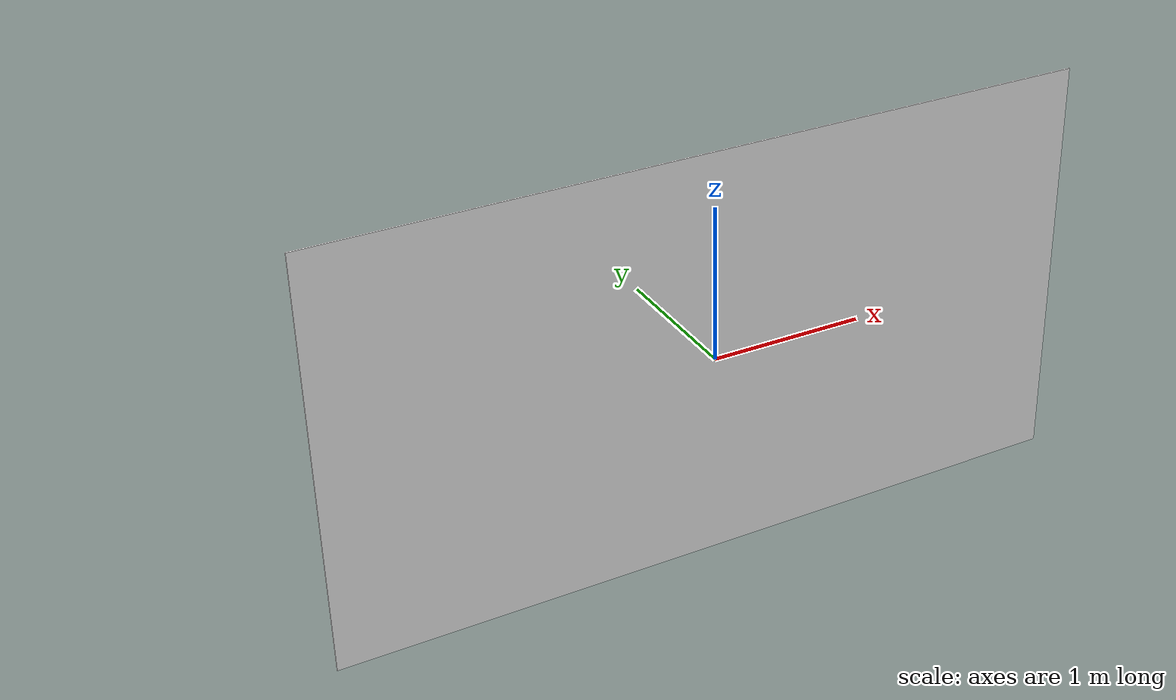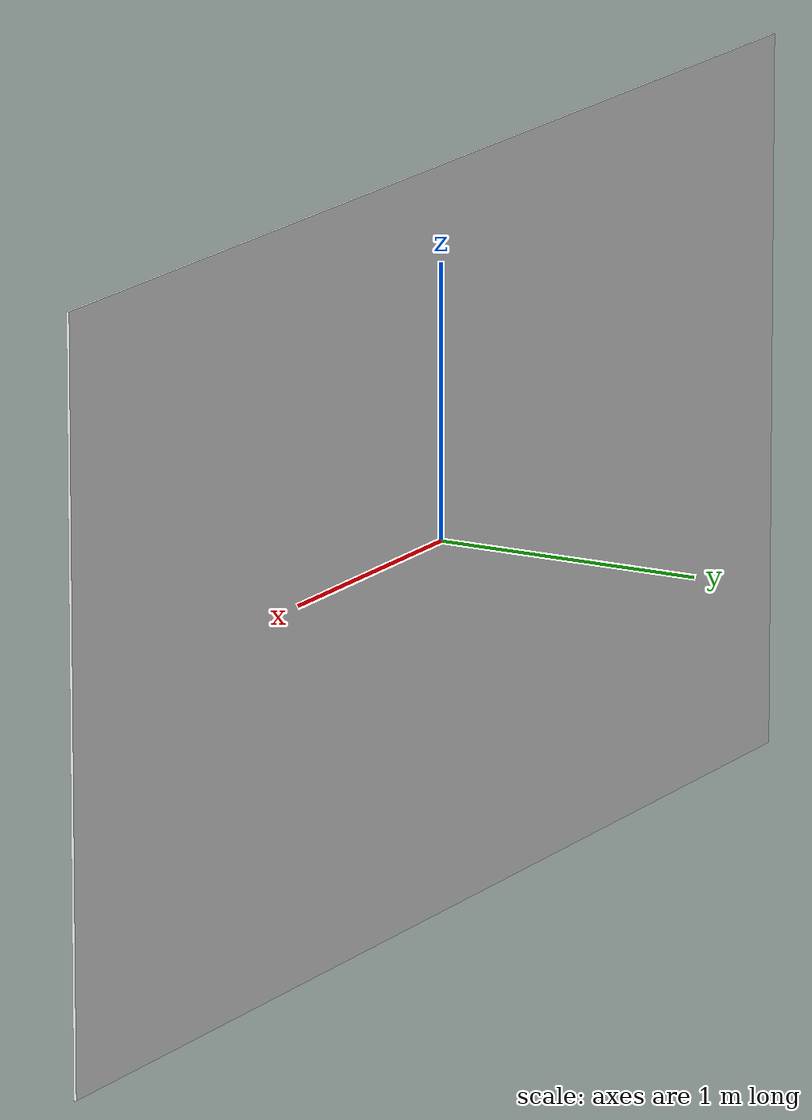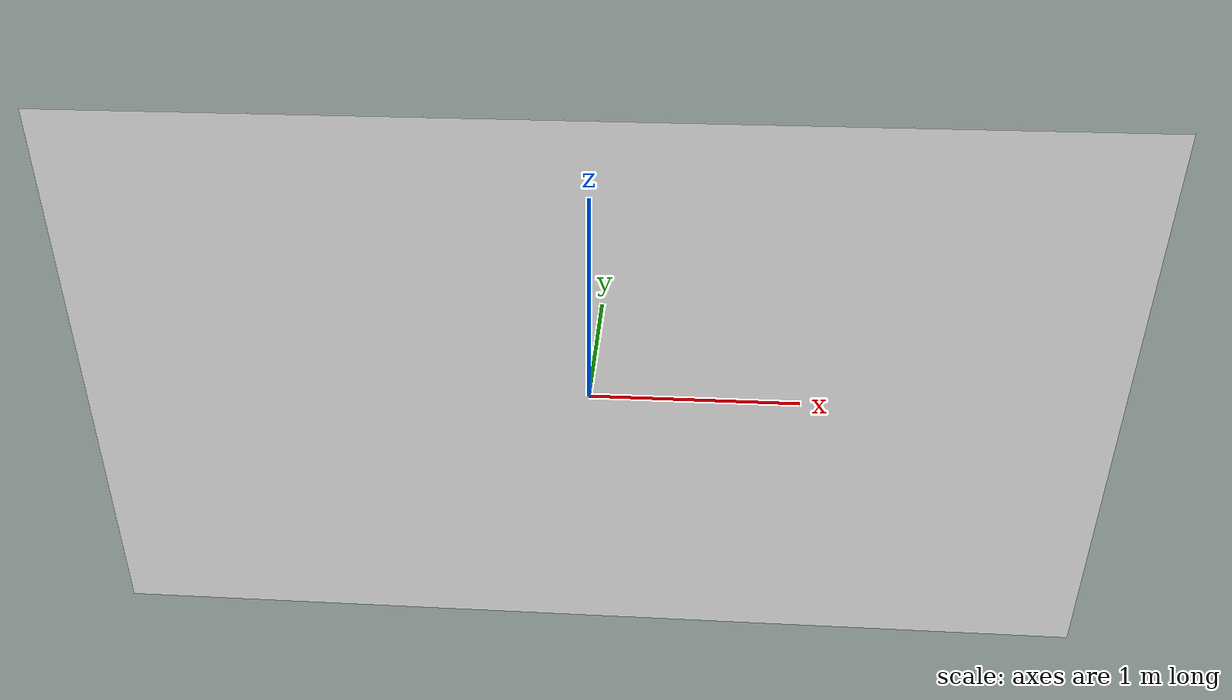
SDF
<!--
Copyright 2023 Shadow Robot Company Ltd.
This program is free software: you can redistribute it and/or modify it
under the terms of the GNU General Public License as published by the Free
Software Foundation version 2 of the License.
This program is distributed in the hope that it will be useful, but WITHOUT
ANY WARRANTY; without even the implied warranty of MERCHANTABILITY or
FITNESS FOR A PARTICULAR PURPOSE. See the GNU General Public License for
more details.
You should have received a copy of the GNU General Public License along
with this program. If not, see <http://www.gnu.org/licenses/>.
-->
<?xml version='1.0'?>

<sdf version="1.4">
<model name="wall">
    <static>true</static>
    <link name="link">
      <collision name="collision_wall">
        <geometry>
          <box>
            <size>5.0 0.01 2.7</size>
          </box>
        </geometry>
      </collision>
      <visual name="visual_wall">
        <geometry>
          <box>
            <size>5.0 0.01 2.7</size>
          </box>
        </geometry>
        <material>
          <script>
            <uri>file://media/materials/scripts/gazebo.material</uri>
            <name>Gazebo/White</name>
          </script>
        </material>
      </visual>
    </link>
  </model>
</sdf>
